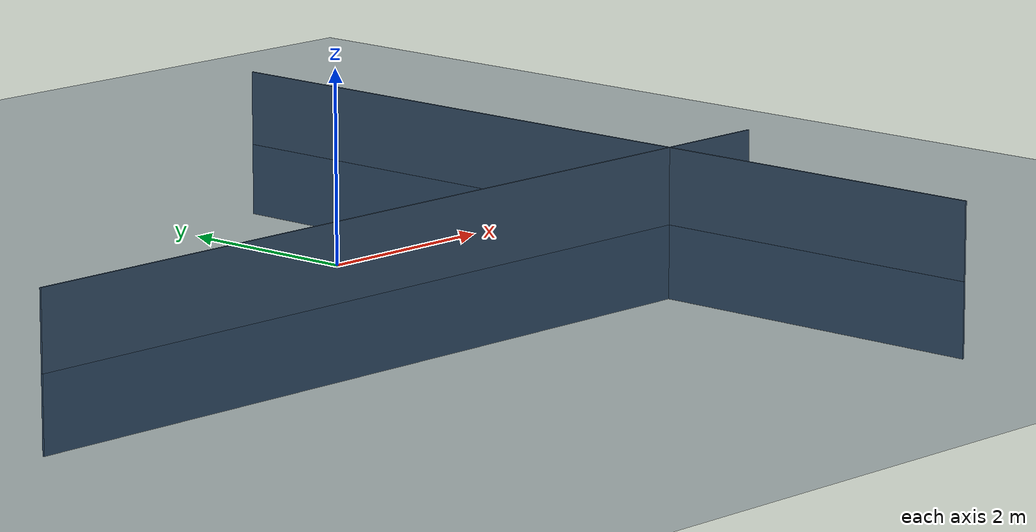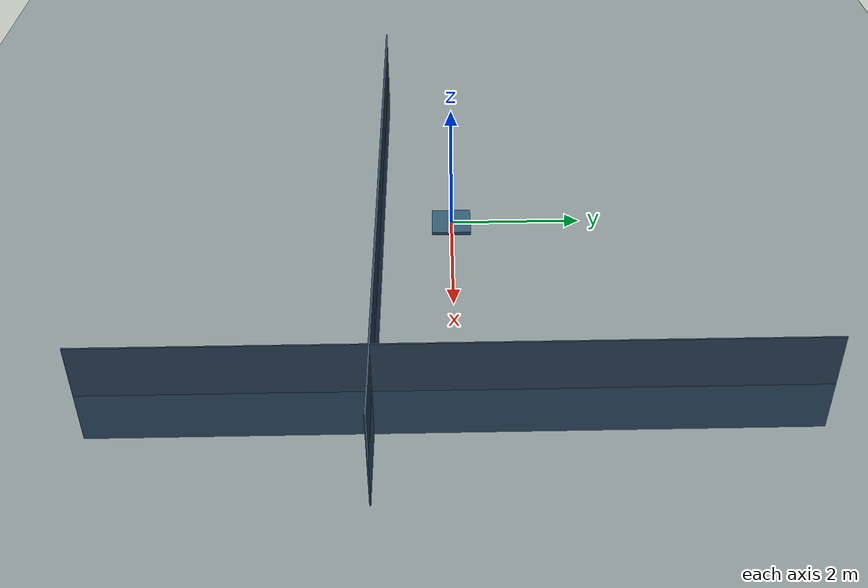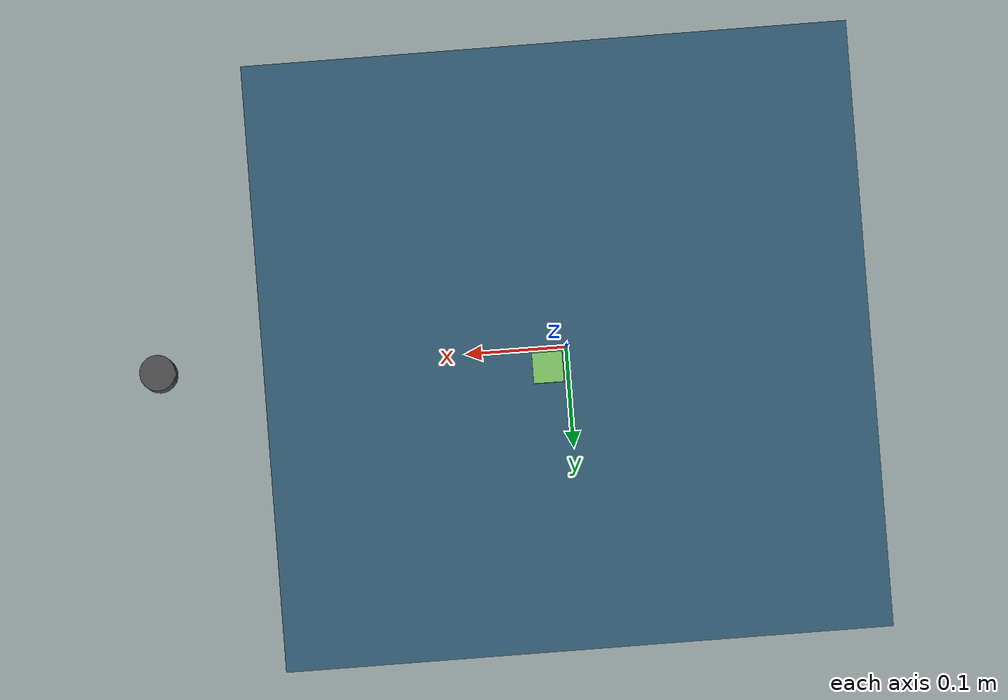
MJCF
<mujoco>
    <include file="base_env.xml"></include>
    <asset>
        <texture builtin="flat" type="2d" name="cube0_tex" height="32" width="32" />
        <material name="cube0_mat" specular="0.5" shininess="0.2" reflectance="0" texture="cube0_tex" />
        <texture builtin="flat" type="2d" name="cube1_tex" height="32" width="32" />
        <material name="cube1_mat" specular="0.5" shininess="0.2" reflectance="0" texture="cube1_tex" />
        <texture builtin="flat" type="2d" name="marker0_tex" height="32" width="32" />
        <material name="marker0_mat" specular="0.5" shininess="0.2" reflectance="0" texture="marker0_tex" />
        <texture builtin="flat" type="2d" name="marker1_tex" height="32" width="32" />
        <material name="marker1_mat" specular="0.5" shininess="0.2" reflectance="0" texture="marker1_tex" />
    </asset>
    <worldbody>
        <body childclass="cube0" name="cube0" pos="0.02 0.02 0.02">
            <joint name="cube0_joint" />
            <geom name="cube0" size="0.015 0.015 0.015" type="box"  material="cube0_mat" rgba="0.502 0.769 0.388 1" />
            <site name="cube0" size="0.015 0.015 0.015" rgba="1 0 0 1" type="sphere" />
        </body>
        <body childclass="cube0" name="cube1" pos="0.02 0.02 0.02">
            <joint name="cube1_joint" />
            <geom name="cube1" size="0.015 0.015 0.015" type="box"  material="cube1_mat" rgba="0.502 0.769 0.388 1" />
            <site name="cube1" size="0.015 0.015 0.015" rgba="1 0 0 1" type="sphere" />
        </body>
        <body mocap="true" name="markers" pos="-0.15 0.0 0.03">
            <body name="marker0">
                <site name="marker0" size="0.03 0.03 0.01" pos="0.0 0.075 0.0" type="box" rgba="0 0 0 0" />
                <geom name="marker0" size="0.03 0.03 0.01" pos="0.0 0.075 0.0" type="plane" material="marker0_mat"  rgba="0.592 0.188 0.365 1" />
            </body>

            <body name="marker1">
                <site name="marker1" size="0.03 0.03 0.01" pos="0.0 -0.075 0.0" type="box" rgba="0 0 0 0" />
                <geom name="marker1" size="0.03 0.03 0.01" pos="0.0 -0.075 0.0" type="plane"  material="marker1_mat"  rgba="0.592 0.188 0.365 1" />
            </body>
        </body>
    </worldbody>

</mujoco>

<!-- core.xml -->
<mujoco>
    <compiler angle="radian" />
    <size njmax="500" nconmax="100" />
    <!-- initial -->
    <option timestep="2e-3"
            iterations="10"
            tolerance="1e-10"
            solver="Newton"
            cone="elliptic"
            impratio="2"
            noslip_iterations="2"
    >
        <flag warmstart="enable"></flag>
    </option>
    <visual>
        <map znear="0.001"/>

    </visual>
    <!-- default geom and joints parameters -->
    <default>
        <geom condim="4" solref="0.005 1" solimp="0.95 0.99 0.001"/>
        <default class="tool">
           <joint armature="0.25" damping="1" stiffness="0.01" />
        </default>

        <default class="cube0">
            <joint type="free" damping="0.1" frictionloss="0.3" />
            <geom condim="3" mass="45" />
        </default>
    </default>

    <visual>
        <scale forcewidth='0.02' contactwidth='0.06' contactheight='0.02' jointwidth='0.02' framewidth='0.02' framelength='0.3'/>
    </visual>
</mujoco>

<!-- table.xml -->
<mujoco>
    <worldbody>
        <geom name="table" pos="0 0 0" size="0.3 0.3 0.025" type="box" material="table_mat" />
        <geom name="floor" pos="0 0 0" size="10 10 0.01" type="plane" material="floor_mat" friction="0.4" />
        <geom name="wall0" pos="0 -1.12 0" quat="0.70710678 0.70710678 0 0" size="5 0.8 0.01" type="box" material="wall0_mat"/>
        <geom name="wall1" pos="3.75 0 0" quat="0.5 0.5 0.5 0.5" size="5 0.8 0.01" type="box" material="wall1_mat"/>
    </worldbody>
</mujoco>

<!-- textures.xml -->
<mujoco>
    <asset>
        <!-- textures -->
        <!-- floor/table/background -->
        <texture builtin="gradient" type="skybox" name="skybox" rgb1="0.4 0.6 0.8" rgb2="0 0 0" width="256" height="256"/>
        <texture builtin="checker" type="2d" name="floor_tex" rgb1=".2 .3 .4" rgb2=".1 .2 .3" width="256" height="256" mark="edge" markrgb=".8 .8 .8" />
        <texture builtin="flat" type="2d" name="wall0_tex" rgb1=".2 .3 .4" rgb2=".1 .2 .3" width="256" height="256" mark="edge" markrgb=".8 .8 .8" />
        <texture builtin="flat" type="2d" name="wall1_tex" rgb1=".2 .3 .4" rgb2=".1 .2 .3" width="256" height="256" mark="edge" markrgb=".8 .8 .8" />
        <texture builtin="flat" type="2d" name="table_tex" rgb1="0.192 0.356 0.451" height="256" width="256"  />

        <!-- material -->
        <material name="floor_mat" texrepeat="5 5" texuniform="true" reflectance="0.0" texture="floor_tex" />
        <material name="wall0_mat" texrepeat="5 5" texuniform="true" reflectance="0" texture="wall0_tex" />
        <material name="wall1_mat" texrepeat="5 5" texuniform="true" reflectance="0" texture="wall1_tex" />
        <material name="table_mat" texrepeat="5 5" texuniform="true" shininess="0.4" specular="0.7" reflectance="0" texture="table_tex" />
    </asset>
</mujoco>

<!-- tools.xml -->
<mujoco>
    <asset>
        <texture builtin="flat" type="2d" name="broom_tex" height="32" width="32" />
        <material name="broom_mat" specular="0.5" shininess="0.2" reflectance="0" texture="broom_tex" />
    </asset>
    <worldbody>
        <body mocap="true" childclass="tool" name="broom_mocap" pos="0.4 0.0 0.1">
            <geom name="broom" size="0.0175 0.035" type="cylinder" material="broom_mat" rgba="0.3 0.3 0.3 1" />
        </body>
    </worldbody>
</mujoco>

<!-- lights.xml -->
<mujoco>
    <visual>
        <headlight diffuse="0.5 0.5 0.5" ambient="0.3 0.3 0.3" specular="0 0 0" active="1"/>
    </visual>

    <worldbody>
        <light name="light0" directional="true" castshadow="true" active="true" />
    </worldbody>

</mujoco>

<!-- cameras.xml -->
<mujoco>
    <worldbody>
        <body name="frontal_camera">
            <camera name="lateral_camera" fovy="42.5" pos="0.0 0.65 0.400215" quat="0  0 -0.4152266 -0.9097179" />
        </body>
        <body name="lateral_camera">
            <camera name="frontal_camera" fovy="42.5" pos="-0.65 0.005 0.403127" quat=" 0.64261454  0.2973069  -0.29811335 -0.64014342"  />
        </body>
        <body name="top_camera">
            <camera name="top_camera" fovy="42.5" pos="0 0.1  0.95" quat="0 0 0 -1"  />
        </body>
    </worldbody>
</mujoco>

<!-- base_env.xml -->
<mujoco>
    <include file="core.xml" />
    <include file="table.xml" />
    <include file="textures.xml" />
    <include file="tools.xml" />
    <include file="lights.xml" />
    <include file="cameras.xml" />
</mujoco>
